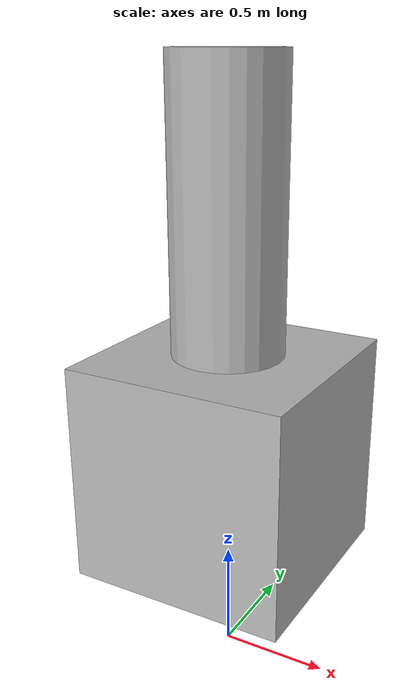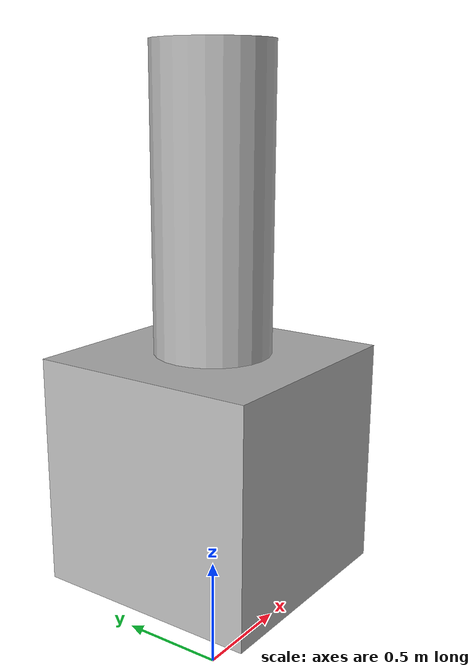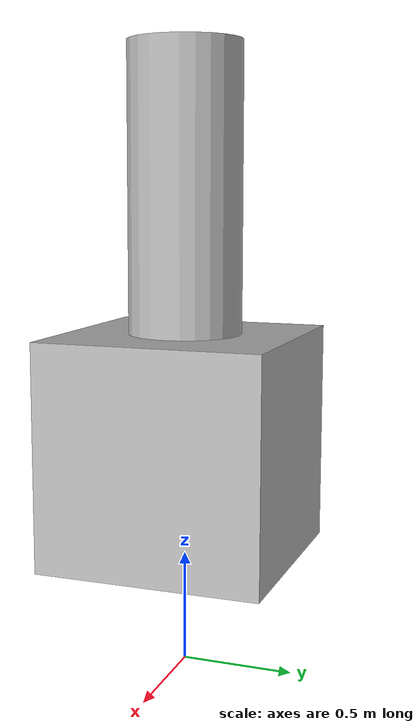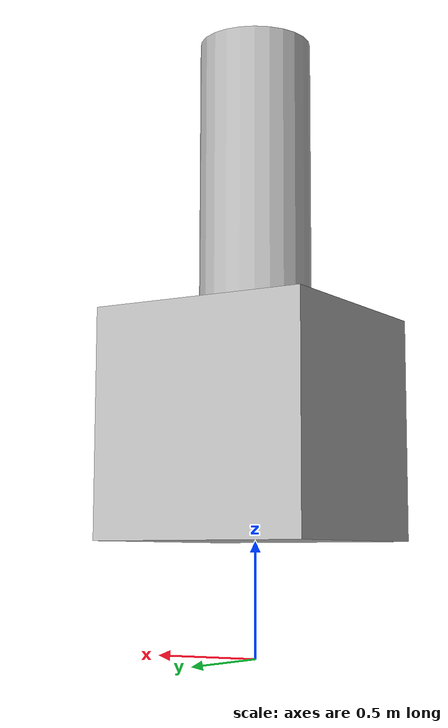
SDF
<?xml version='1.0'?>
<sdf version="1.4">
    <model name="box_model">
        <pose>0 0 1 0 0 0</pose>
        <static>false</static>
        <link name="link">
            <inertial>
                <mass>1.0</mass>
                <inertia>
                    <ixx>0.083</ixx>
                    <ixy>0.0</ixy>
                    <ixz>0.0</ixz>
                    <iyy>0.083</iyy>
                    <iyz>0.0</iyz>
                    <izz>0.083</izz>
                </inertia>
            </inertial>
            <collision name="collision">
                <geometry>
                    <box>
                        <size>1 1 1</size>
                    </box>
                </geometry>
            </collision>
            <visual name="visual1">
                <geometry>
                    <box>
                        <size>1 1 1</size>
                    </box>
                </geometry>
            </visual>
            <visual name="visual2">
                <pose>0 0 1 0 0 0</pose>
                <geometry>
                    <cylinder>
                        <radius>0.25</radius>
                        <length>1.5</length>
                    </cylinder>
                </geometry>
            </visual>
        </link>
    </model>
</sdf>
